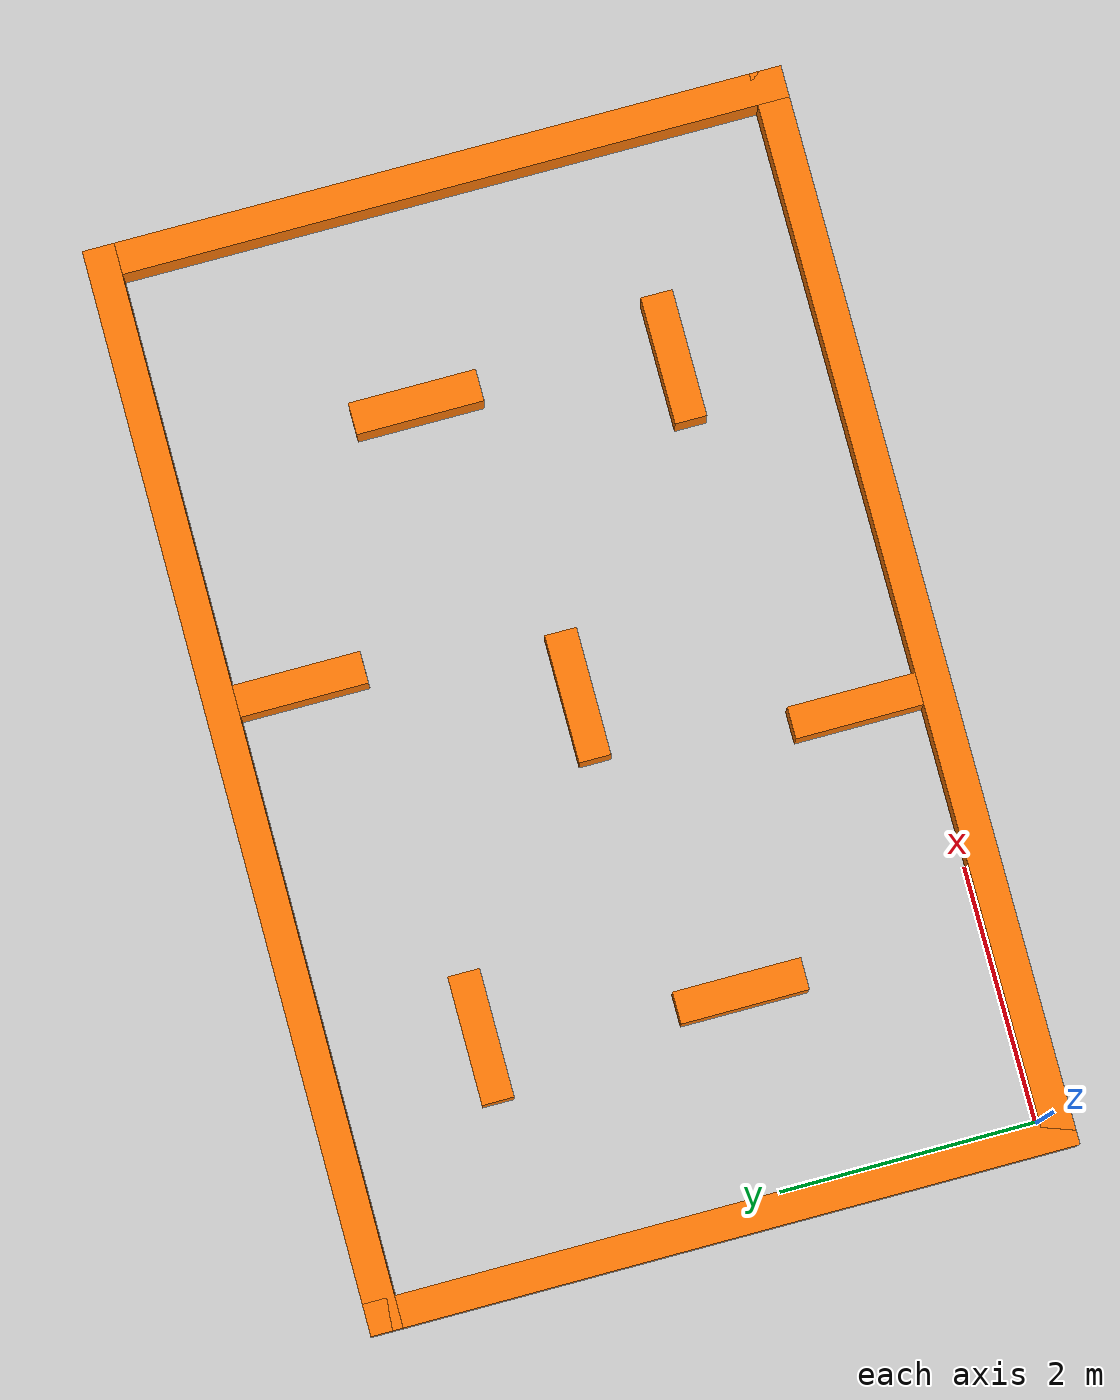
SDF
<sdf version="1.6">
 <world name="default">
  <gravity>0 0 -9.8</gravity>
  <magnetic_field>6e-06 2.3e-05 -4.2e-05</magnetic_field>
  <atmosphere type="adiabatic"/>
  <physics name="default_physics" default="0" type="ode">
   <max_step_size>0.001</max_step_size>
   <real_time_factor>1</real_time_factor>
   <real_time_update_rate>1000</real_time_update_rate>
  </physics>
  <scene><ambient>0.4 0.4 0.4 1</ambient><background>0.7 0.7 0.7 1</background><shadows>1</shadows></scene>
  <spherical_coordinates>
   <surface_model>EARTH_WGS84</surface_model>
   <latitude_deg>0</latitude_deg>
   <longitude_deg>0</longitude_deg>
   <elevation>0</elevation>
   <heading_deg>0</heading_deg>
  </spherical_coordinates>
  <light name="sun" type="directional">
   <pose>0 0 10 0 -0 0</pose>
   <diffuse>0.8 0.8 0.8 1</diffuse>
   <specular>0.1 0.1 0.1 1</specular>
   <attenuation>
    <range>1000</range>
    <constant>0.9</constant>
    <linear>0.01</linear>
    <quadratic>0.001</quadratic>
   </attenuation>
   <direction>-0.5 0.5 -1</direction>
  </light>
  <model name="ground_plane">
   <static>1</static>
   <link name="link">
    <collision name="collision">
     <geometry><plane><normal>0 0 1</normal><size>20 20</size></plane></geometry>
     <surface><friction><ode><mu>100</mu><mu2>50</mu2></ode></friction></surface>
    </collision>
    <visual name="visual">
     <cast_shadows>0</cast_shadows>
     <pose>4 2.5 0 0 0 0</pose>
     <geometry><plane><normal>0 0 1</normal><size>8 5</size></plane></geometry>
     <material>
      <script>
       <uri>file://roborts_gazebo/floor.material</uri>
       <uri>file://roborts_gazebo/competition_field.png</uri>
       <name>CompetitionField/Test</name>
      </script>
     </material>
    </visual>
   </link>
  </model>
  <model name="ICRA_map">
   <pose>4 2.5 0 0 -0 0</pose>
   <static>1</static>
   <link name="Wall_Bottom">
    <pose>0 -2.625 0 0 -0 0</pose>
    <collision name="Wall_Bottom_Collision">
     <pose>0 0 0.2 0 -0 0</pose>
     <geometry><box><size>8.5 0.25 0.4</size></box></geometry>
    </collision>
    <visual name="Wall_Bottom_Visual">
     <pose>0 0 0.2 0 -0 0</pose>
     <geometry><box><size>8.5 0.25 0.4</size></box></geometry>
     <material>
      <script><uri>file://media/materials/scripts/gazebo.material</uri><name>Gazebo/Grey</name></script>
      <ambient>0.996078 0.47451 0.0196078 1</ambient>
     </material>
    </visual>
   </link>
   <link name="Wall_Right">
    <pose>4.125 0 0 0 -0 1.5708</pose>
    <collision name="Wall_Right_Collision">
     <geometry><box><size>5.5 0.25 0.4</size></box></geometry>
     <pose>0 0 0.2 0 -0 0</pose>
    </collision>
    <visual name="Wall_Right_Visual">
     <pose>0 0 0.2 0 -0 0</pose>
     <geometry><box><size>5.5 0.25 0.4</size></box></geometry>
     <material>
      <script><uri>file://media/materials/scripts/gazebo.material</uri><name>Gazebo/Grey</name></script>
      <ambient>0.996078 0.47451 0.0196078 1</ambient>
     </material>
    </visual>
   </link>
   <link name="Wall_Top">
    <pose>0 2.625 0 0 -0 3.14159</pose>
    <collision name="Wall_Top_Collision">
     <geometry><box><size>8.5 0.25 0.4</size></box></geometry>
     <pose>0 0 0.2 0 -0 0</pose>
    </collision>
    <visual name="Wall_Top_Visual">
     <pose>0 0 0.2 0 -0 0</pose>
     <geometry><box><size>8.5 0.25 0.4</size></box></geometry>
     <material>
      <script><uri>file://media/materials/scripts/gazebo.material</uri><name>Gazebo/Grey</name></script>
      <ambient>0.996078 0.47451 0.0196078 1</ambient>
     </material>
    </visual>
   </link>
   <link name="Wall_Left">
    <pose>-4.125 0 0 0 0 -1.5708</pose>
    <collision name="Wall_Left_Collision">
     <geometry><box><size>5.5 0.25 0.4</size></box></geometry>
     <pose>0 0 0.2 0 -0 0</pose>
    </collision>
    <visual name="Wall_Left_Visual">
     <pose>0 0 0.2 0 -0 0</pose>
     <geometry><box><size>5.5 0.25 0.4</size></box></geometry>
     <material>
      <script><uri>file://media/materials/scripts/gazebo.material</uri><name>Gazebo/Grey</name></script>
      <ambient>0.996078 0.47451 0.0196078 1</ambient>
     </material>
    </visual>
   </link>
   <link name="Wall_TopRight">
    <pose>2.475 0.6 0 0 0 1.5708</pose>
    <collision name="Wall_TopRight_Collision">
     <geometry><box><size>1 0.25 0.4</size></box></geometry>
     <pose>0 0 0.2 0 -0 0</pose>
    </collision>
    <visual name="Wall_TopRight_Visual">
     <pose>0 0 0.2 0 -0 0</pose>
     <geometry><box><size>1 0.25 0.4</size></box></geometry>
     <material>
      <script><uri>file://media/materials/scripts/gazebo.material</uri><name>Gazebo/Grey</name></script>
      <ambient>0.996078 0.47451 0.0196078 1</ambient>
     </material>
    </visual>
   </link>
   <link name="Wall_BottomLeft">
    <pose>-2.475 -0.6 0 0 0 -1.5708</pose>
    <collision name="Wall_BottomLeft_Collision">
     <geometry><box><size>1 0.25 0.4</size></box></geometry>
     <pose>0 0 0.2 0 -0 0</pose>
    </collision>
    <visual name="Wall_BottomLeft_Visual">
     <pose>0 0 0.2 0 -0 0</pose>
     <geometry><box><size>1 0.25 0.4</size></box></geometry>
     <material>
      <script><uri>file://media/materials/scripts/gazebo.material</uri><name>Gazebo/Grey</name></script>
      <ambient>0.996078 0.47451 0.0196078 1</ambient>
     </material>
    </visual>
   </link>
   <link name="Wall_RedBuff">
    <pose>2.3 -1.375 0 0 0 0</pose>
    <collision name="Wall_RedBuff_Collision">
     <geometry><box><size>1 0.25 0.4</size></box></geometry>
     <pose>0 0 0.2 0 -0 0</pose>
    </collision>
    <visual name="Wall_RedBuff_Visual">
     <pose>0 0 0.2 0 -0 0</pose>
     <geometry><box><size>1 0.25 0.4</size></box></geometry>
     <material>
      <script><uri>file://media/materials/scripts/gazebo.material</uri><name>Gazebo/Grey</name></script>
      <ambient>0.996078 0.47451 0.0196078 1</ambient>
     </material>
    </visual>
   </link>
   <link name="Wall_BlueBuff">
    <pose>-2.3 1.375 0 0 0 -3.14159</pose>
    <collision name="Wall_BlueBuff_Collision">
     <geometry><box><size>1 0.25 0.4</size></box></geometry>
     <pose>0 0 0.2 0 -0 0</pose>
    </collision>
    <visual name="Wall_BlueBuff_Visual">
     <pose>0 0 0.2 0 -0 0</pose>
     <geometry><box><size>1 0.25 0.4</size></box></geometry>
     <material>
      <script><uri>file://media/materials/scripts/gazebo.material</uri><name>Gazebo/Grey</name></script>
      <ambient>0.996078 0.47451 0.0196078 1</ambient>
     </material>
    </visual>
   </link>
   <link name="Wall_Center">
    <collision name="Wall_Center_Collision">
     <geometry><box><size>1 0.25 0.4</size></box></geometry>
     <pose>0 0 0.2 0 -0 0</pose>
    </collision>
    <visual name="Wall_Center_Visual">
     <pose>0 0 0.2 0 -0 0</pose>
     <geometry><box><size>1 0.25 0.4</size></box></geometry>
     <material>
      <script><uri>file://media/materials/scripts/gazebo.material</uri><name>Gazebo/Grey</name></script>
      <ambient>0.996078 0.47451 0.0196078 1</ambient>
     </material>
    </visual>
   </link>
   <link name="Wall_TopReload">
    <pose>0.625 2 0 0 0 1.5708</pose>
    <collision name="Wall_TopReload_Collision">
     <geometry><box><size>1 0.25 0.4</size></box></geometry>
     <pose>0 0 0.2 0 -0 0</pose>
    </collision>
    <visual name="Wall_TopReload_Visual">
     <pose>0 0 0.2 0 -0 0</pose>
     <geometry><box><size>1 0.25 0.4</size></box></geometry>
     <material>
      <script><uri>file://media/materials/scripts/gazebo.material</uri><name>Gazebo/Grey</name></script>
      <ambient>0.996078 0.47451 0.0196078 1</ambient>
     </material>
    </visual>
   </link>
   <link name="Wall_BottomReload">
    <pose>-0.625 -2 0 0 0 -1.5708</pose>
    <collision name="Wall_BottomReload_Collision">
     <geometry><box><size>1 0.25 0.4</size></box></geometry>
     <pose>0 0 0.2 0 -0 0</pose>
    </collision>
    <visual name="Wall_BottomReload_Visual">
     <pose>0 0 0.2 0 -0 0</pose>
     <geometry><box><size>1 0.25 0.4</size></box></geometry>
     <material>
      <script><uri>file://media/materials/scripts/gazebo.material</uri><name>Gazebo/Grey</name></script>
      <ambient>0.996078 0.47451 0.0196078 1</ambient>
     </material>
    </visual>
   </link>
  </model>
 </world>
</sdf>
